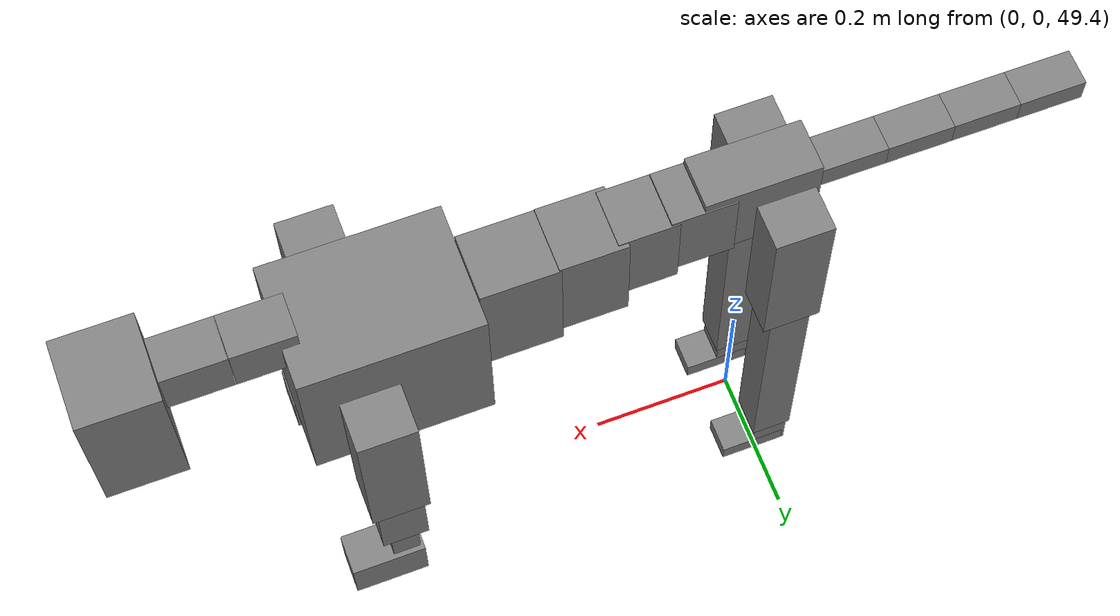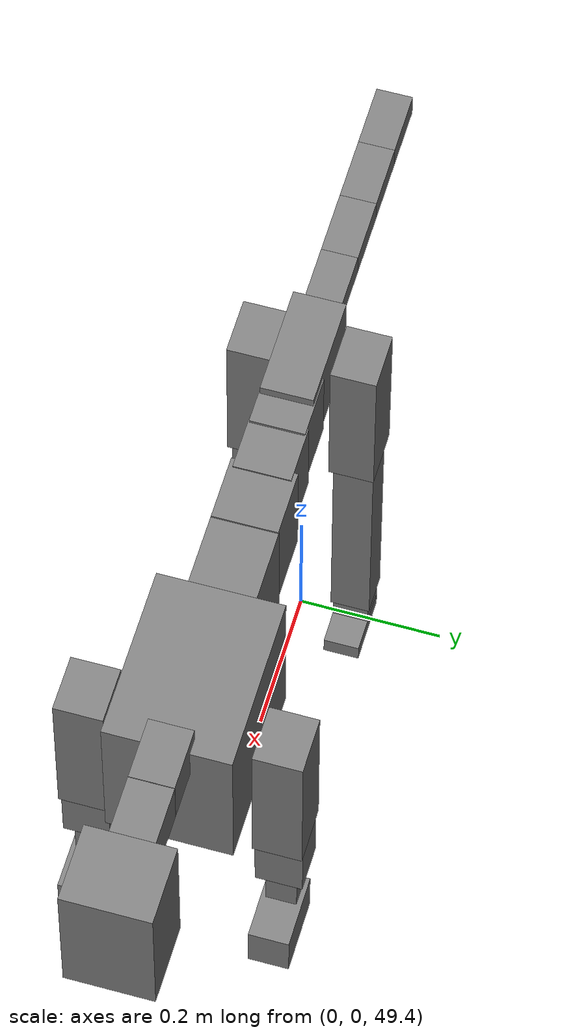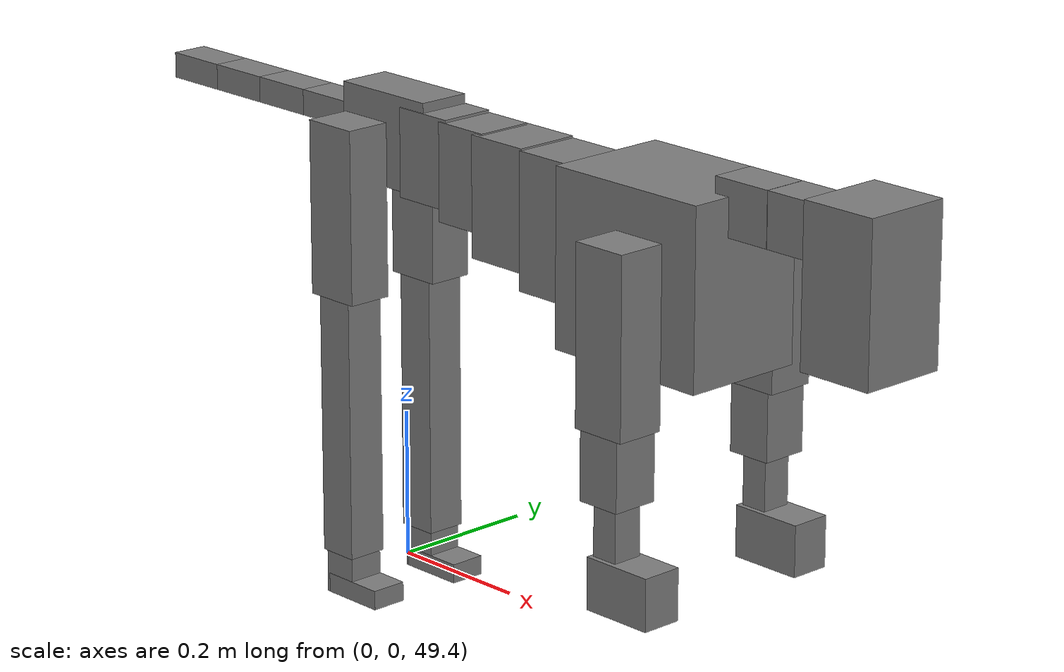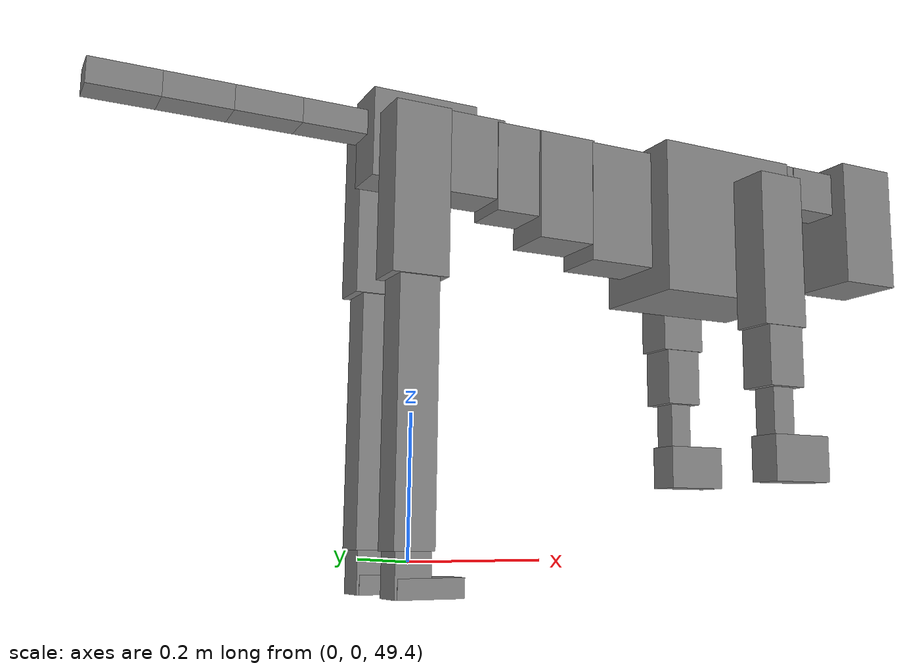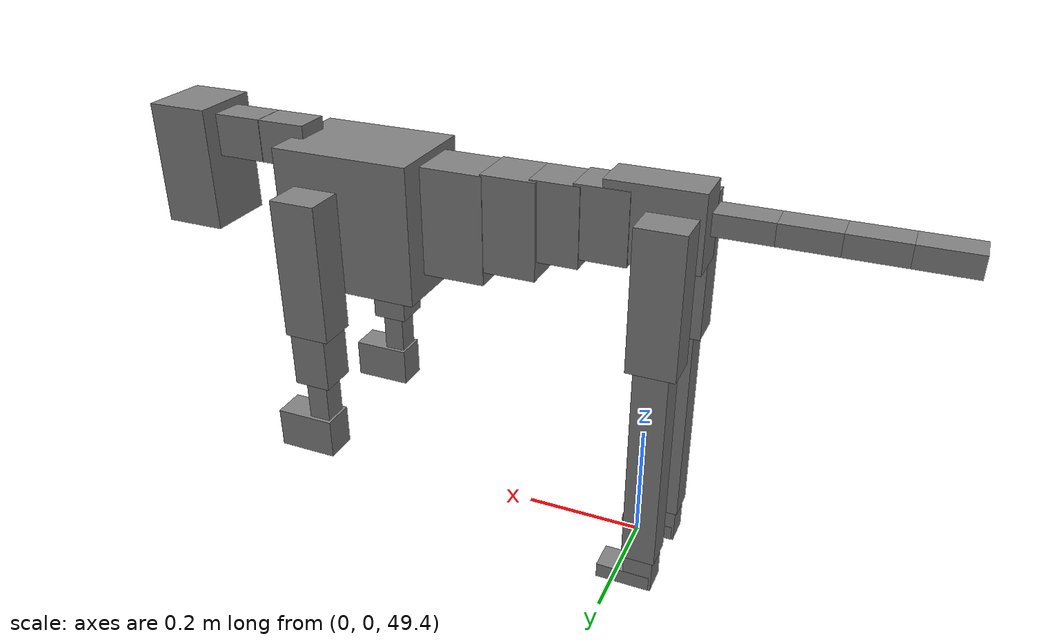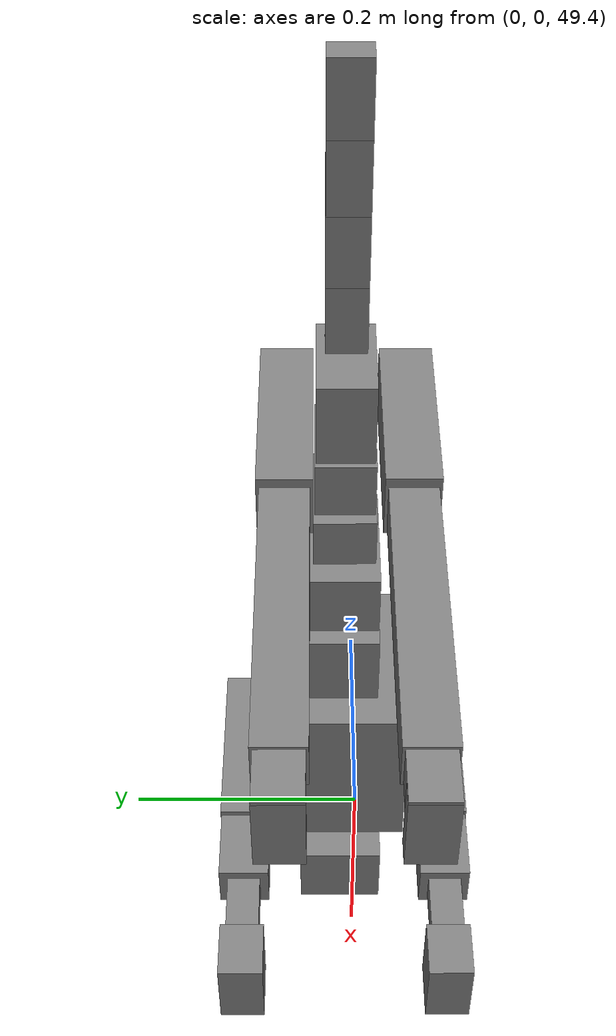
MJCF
<mujoco model="dog">

    <default>
        <joint armature="0.02" stiffness="1" damping="0.2" limited="true"/>
        <geom condim="3" friction="1 0.05 0.05" margin="0.01"/>
        <motor ctrllimited="true" ctrlrange="-1.0 1.0" forcelimited="true" gear="50"/>
    </default>

    <compiler inertiafromgeom="true" angle="radian"/>

    <option timestep="0.016" iterations="50" tolerance="1e-10" solver="Newton" jacobian="dense" cone="pyramidal"/>

    <size nconmax="20000" njmax="60000" nstack="5000000"/>
    <visual>
        <map force="0.1" zfar="30"/>
        <rgba haze="0.15 0.25 0.35 1"/>
        <quality shadowsize="2048"/>
        <global offwidth="800" offheight="800"/>
    </visual>

    <asset>
        <texture type="skybox" builtin="gradient" rgb1="0.3 0.5 0.7" rgb2="0 0 0" width="512" height="512"/>
        <texture name="texplane" type="2d" builtin="checker" rgb1=".2 .3 .4" rgb2=".1 0.15 0.2" width="512" height="512"
                 mark="cross" markrgb=".8 .8 .8"/>
        <texture name="texgeom" type="cube" builtin="flat" mark="cross" width="127" height="1278" rgb1="0.8 0.6 0.4"
                 rgb2="0.8 0.6 0.4" markrgb="1 1 1" random="0.01"/>

        <material name="matplane" reflectance="0.3" texture="texplane" texrepeat="1 1" texuniform="true"/>
        <material name="matgeom" texture="texgeom" texuniform="true" rgba="0.8 0.6 .4 1"/>
    </asset>

    <worldbody>
        <geom name="floor" pos="0 0 0" size="0 0 .25" type="plane" material="matplane" condim="3"/>

        <light directional="false" diffuse=".2 .2 .2" specular="0 0 0" pos="0 0 5" dir="0 0 -1" castshadow="false"/>
        <light mode="targetbodycom" target="torso" directional="false" diffuse=".8 .8 .8" specular="0.3 0.3 0.3"
               pos="0 0 4.0" dir="0 0 -1"/>

        <body name="root" pos="0 0 50">
            <freejoint name="root_1"/>
            <geom type="box" pos="0 0 -0.02" size="0.0774  0.0358  0.063" density="2030"/>

            <body name="spine1" pos="0.054 0 0">
                <joint name="spine1_y" axis="0 1 0" range="0 0.7" limited="true"/>
                <geom type="box" pos="0.02375 0 -0.03" size="0.04375  0.0375  0.05985" density="2030"/>

                <body name="spine2" pos="0.0612 0 0">
                    <joint name="spine2_y" axis="0 1 0" range="-0.15 0.15" limited="true"/>
                    <geom type="box" pos="0.03555  0  -0.04" size="0.04055  0.039  0.06615" density="2030"/>

                    <body name="spine3" pos="0.0730 0 0">
                        <joint name="spine3_y" axis="0 1 0" range="-0.15 0.15" limited="true"/>
                        <geom type="box" pos="0.03555  0  -0.057" size="0.04555  0.0445  0.081" density="2030"/>

                        <body name="spine4" pos="0.0780 0 0">
                            <joint name="spine4_y" axis="0 1 0" range="-0.15 0.15" limited="true"/>
                            <geom type="box" pos="0.05265  0  -0.07" size="0.05265  0.045  0.09135" density="2030"/>

                            <body name="torso" pos="0.1082 0 0">
                                <joint name="torso_y" axis="0 1 0" range="-0.15 0.15" limited="true"/>
                                <geom type="box" pos="0.11925  0  -0.085" size="0.11925  0.085  0.11745"
                                      density="2030"/>

                                <body name="neck1" pos="0.2160  0   0.0180">
                                    <joint name="neck1_y" axis="0 1 0" range="-1.2  -1" limited="true"/>
                                    <geom type="box" pos="0.0423  0  0" size="0.0423  0.03  0.036" density="2325"/>

                                    <body name="neck2" pos="0.0853  0  0">
                                        <joint name="neck2_y" axis="0 1 0" range="0.1  0" limited="true"/>
                                        <geom type="box" pos="0.0423  0  0" size="0.0423  0.03  0.036" density="2325"/>

                                        <body name="head" pos="0.0853  0  0">
                                            <joint name="head_y" axis="0 1 0" range="-0.3  -0.2" limited="true"/>
                                            <geom type="box" pos="0.0531  0  -0.055" size="0.0531  0.06  0.1044"
                                                  density="4030"/>

                                        </body>
                                    </body>
                                </body>

                                <body name="front_shoulder" pos="0.156  0   -0.0480">
                                    <joint name="front_shoulder_y" axis="0 1 0" range="-1 1.5" limited="true"/>
                                    <geom type="box" pos="0 0.13 -0.0907" size="0.0387  0.0331  0.1174" density="1158"/>
                                    <geom type="box" pos="0 -0.13 -0.0907" size="0.0387  0.0331  0.1174"
                                          density="1158"/>

                                    <body name="front_elbow" pos="0  0  -0.1815">
                                        <joint name="front_elbow_y" axis="0 1 0" range="-2 0" limited="true"/>
                                        <geom type="box" pos="0 0.13 -0.0589" size="0.0312  0.0319  0.0589"
                                              density="1081"/>
                                        <geom type="box" pos="0 -0.13 -0.0589" size="0.0312  0.0319  0.0589"
                                              density="1081"/>

                                        <body name="front_wrist" pos="0  0  -0.1177">
                                            <joint name="front_wrist_y" axis="0 1 0" range="-0.2 0" limited="true"/>
                                            <geom type="box" pos="0 0.13 -0.0430" size="0.0187  0.0208  0.0561"
                                                  density="1664"/>
                                            <geom type="box" pos="0 -0.13 -0.0430" size="0.0187  0.0208  0.0561"
                                                  density="1664"/>

                                            <body name="front_finger_end" pos="0  0  -0.0859">
                                                <joint name="front_finger_y" axis="0 1 0" range="-0.4 1"
                                                       limited="true"/>
                                                <geom type="box" pos="0.0276  0.13  -0.0195"
                                                      size="0.0507  0.0276  0.0345" density="1515"/>
                                                <geom type="box" pos="0.0276  -0.13  -0.0195"
                                                      size="0.0507  0.0276  0.0345" density="1515"/>

                                            </body>

                                        </body>
                                    </body>
                                </body>

                            </body>
                        </body>
                    </body>
                </body>
            </body>

            <body name="back_hip" pos="-0.03 0 -0.018">
                <joint name="back_hip_y" axis="0 1 0" range="-1.5 0.3" limited="true"/>
                <geom type="box" pos="0 0.07 -0.0944" size="0.0395  0.0310  0.1172" density="1154"/>
                <geom type="box" pos="0 -0.07 -0.0944" size="0.0395  0.0310  0.1172" density="1154"/>

                <body name="back_knee" pos="0  0  -0.1888">
                    <joint name="back_knee_y" axis="0 1 0" range="0 2.8" limited="true"/>
                    <geom type="box" pos="0 0.07 -0.1812" size="0.0279  0.0275  0.1967" density="1227"/>
                    <geom type="box" pos="0 -0.07 -0.1812" size="0.0279  0.0275  0.1967" density="1227"/>

                    <body name="back_ankle" pos="0  0  -0.3624">
                        <joint name="back_ankle_y" axis="0 1 0" range="-2.2 0" limited="true"/>
                        <geom type="box" pos="0 0.07 -0.0318" size="0.0246  0.0246  0.0431" density="1284"/>
                        <geom type="box" pos="0 -0.07 -0.0318" size="0.0246  0.0246  0.0431" density="1284"/>

                        <body name="back_toe_end" pos="0  0  -0.0637">
                            <joint name="back_toe_y" axis="0 1 0" range="-0.4 1" limited="true"/>
                            <geom type="box" pos="0.0249  0.07  0.0018" size="0.0457  0.0249  0.0132" density="1515"/>
                            <geom type="box" pos="0.0249  -0.07  0.0018" size="0.0457  0.0249  0.0132" density="1515"/>

                        </body>
                    </body>
                </body>
            </body>

            <body name="tail1" pos="-0.074 0 -0.006">
                <joint name="tail1_y" axis="0 1 0" range="-0.2 0.2" limited="true"/>
                <geom type="box" pos="-0.0536  0  0" size="0.045  0.025  0.0175" density="1587"/>

                <body name="tail2" pos="-0.09 0 0">
                    <joint name="tail2_y" axis="0 1 0" range="-0.2 0.2" limited="true"/>
                    <geom type="box" pos="-0.0536  0  0" size="0.045  0.025  0.0175" density="1587"/>

                    <body name="tail3" pos="-0.09 0 0">
                        <joint name="tail3_y" axis="0 1 0" range="-0.2 0.2" limited="true"/>
                        <geom type="box" pos="-0.0536  0  0" size="0.045  0.025  0.0175" density="1587"/>

                        <body name="tail4" pos="-0.09 0 0">
                            <joint name="tail4_y" axis="0 1 0" range="-0.2 0.2" limited="true"/>
                            <geom type="box" pos="-0.0536  0  0" size="0.045  0.025  0.0175" density="1587"/>

                        </body>
                    </body>
                </body>
            </body>
        </body>
    </worldbody>

    <actuator>
        <motor joint="spine1_y" forcerange="-150 150     "/>
        <motor joint="spine2_y" forcerange="-150 150     "/>
        <motor joint="spine3_y" forcerange="-150 150     "/>
        <motor joint="spine4_y" forcerange="-150 150     "/>
        <motor joint="torso_y" forcerange="-150 150     "/>
        <motor joint="neck1_y" forcerange="-100 100       "/>
        <motor joint="neck2_y" forcerange="-100 100       "/>
        <motor joint="head_y" forcerange="-150 150       "/>
        <motor joint="front_shoulder_y" forcerange="-160.05 160.32"/>
        <motor joint="front_elbow_y" forcerange="-139.52 192.24"/>
        <motor joint="front_wrist_y" forcerange="-84.24 81.88"/>
        <motor joint="front_finger_y" forcerange="-25.00 82.43"/>
        <motor joint="back_hip_y" forcerange="-264.77 348.06"/>
        <motor joint="back_knee_y" forcerange="-371.84 227.88"/>
        <motor joint="back_angle_y" forcerange="-165.05 128.14"/>
        <motor joint="back_toe_y" forcerange="-42.16 77.41"/>
        <motor joint="tail1_y" forcerange="-50 50     "/>
        <motor joint="tail2_y" forcerange="-50 50     "/>
        <motor joint="tail3_y" forcerange="-50 50     "/>
        <motor joint="tail4_y" forcerange="-50 50     "/>
    </actuator>
</mujoco>
